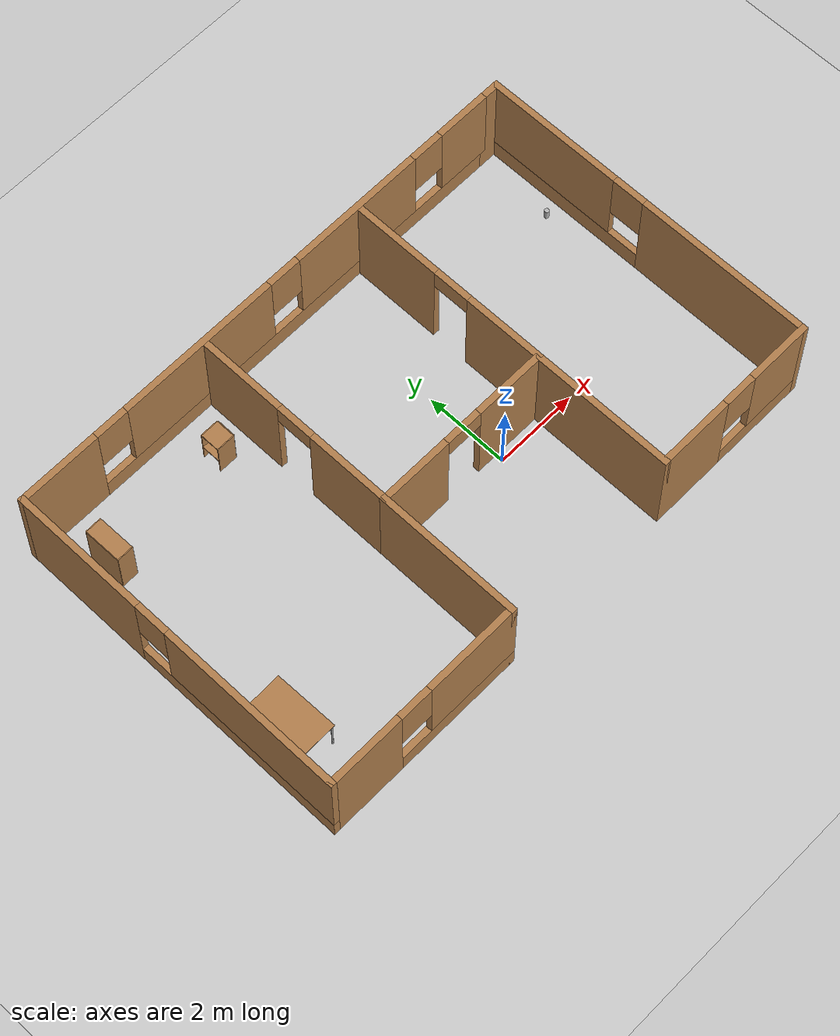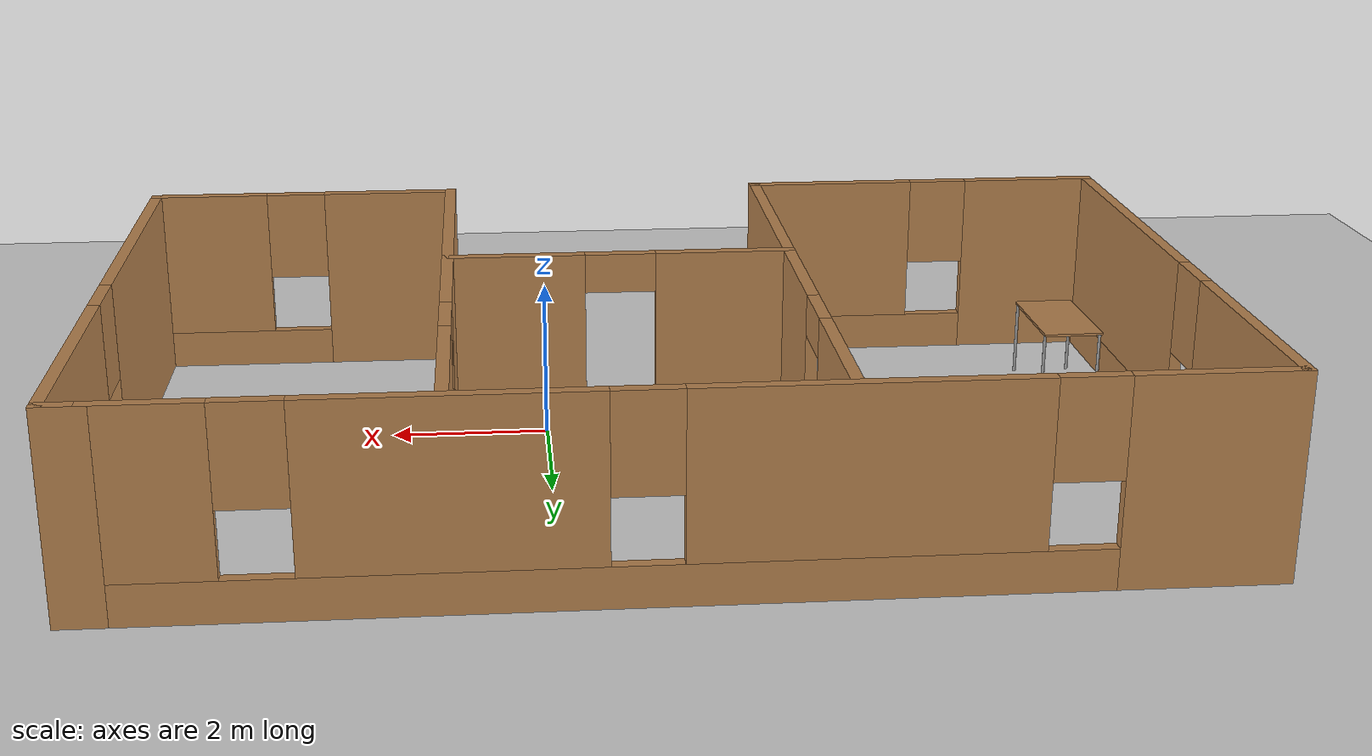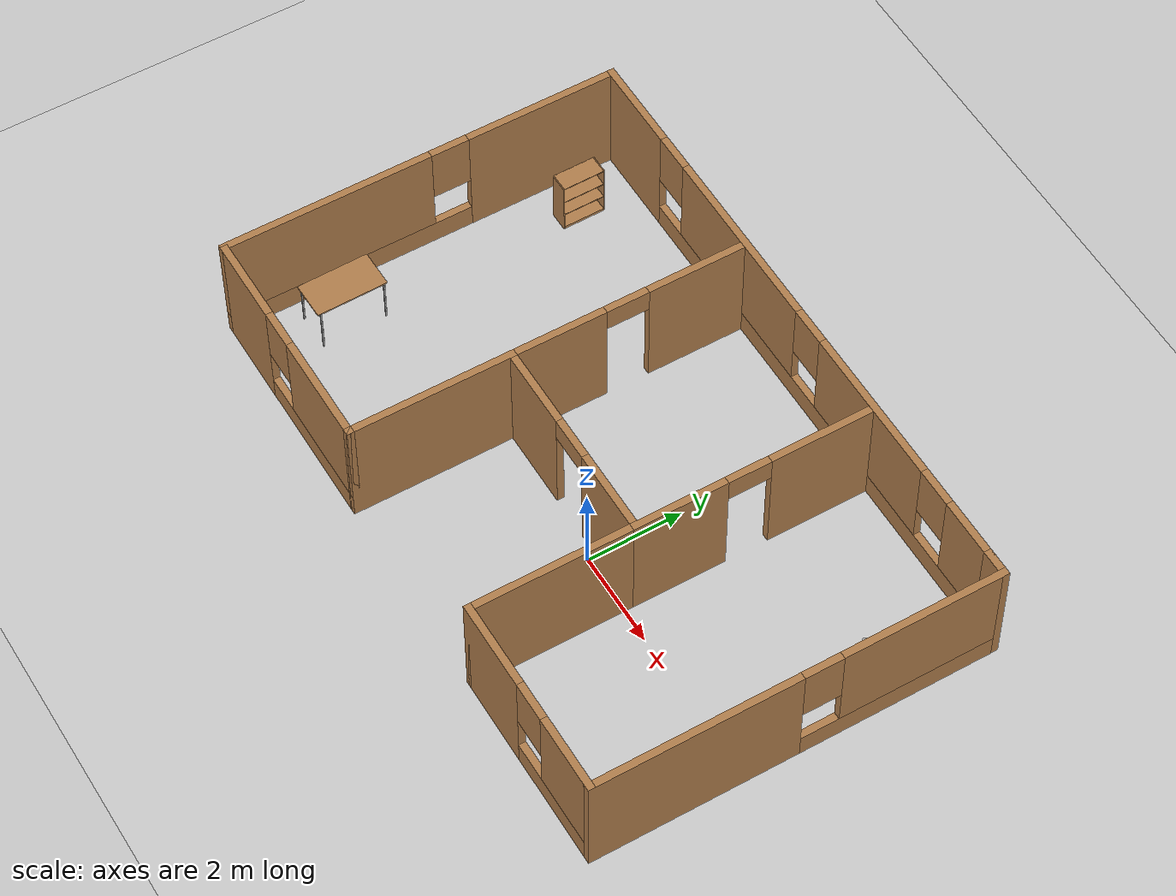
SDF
<sdf version="1.7">
 <world name="default">
  <light name="sun" type="directional">
   <pose>0 0 10 0 -0 0</pose>
   <diffuse>0.8 0.8 0.8 1</diffuse>
   <specular>0.2 0.2 0.2 1</specular>
   <attenuation>
    <range>1000</range>
    <constant>0.9</constant>
    <linear>0.01</linear>
    <quadratic>0.001</quadratic>
   </attenuation>
   <direction>-0.5 0.1 -0.9</direction>
   <spot><inner_angle>0</inner_angle><outer_angle>0</outer_angle><falloff>0</falloff></spot>
  </light>
  <model name="ground_plane">
   <static>1</static>
   <link name="link">
    <collision name="collision">
     <geometry><plane><normal>0 0 1</normal><size>100 100</size></plane></geometry>
     <surface><friction><ode><mu>100</mu><mu2>50</mu2></ode></friction></surface>
    </collision>
    <visual name="visual">
     <cast_shadows>0</cast_shadows>
     <geometry><plane><normal>0 0 1</normal><size>100 100</size></plane></geometry>
     <material>
      <script><uri>file://media/materials/scripts/gazebo.material</uri><name>Gazebo/Grey</name></script>
     </material>
    </visual>
   </link>
  </model>
  <gravity>0 0 -9.8</gravity>
  <magnetic_field>6e-06 2.3e-05 -4.2e-05</magnetic_field>
  <atmosphere type="adiabatic"/>
  <physics type="ode">
   <max_step_size>0.001</max_step_size>
   <real_time_factor>1</real_time_factor>
   <real_time_update_rate>1000</real_time_update_rate>
  </physics>
  <scene><ambient>0.4 0.4 0.4 1</ambient><background>0.7 0.7 0.7 1</background><shadows>1</shadows></scene>
  <audio><device>default</device></audio>
  <spherical_coordinates>
   <surface_model>EARTH_WGS84</surface_model>
   <latitude_deg>0</latitude_deg>
   <longitude_deg>0</longitude_deg>
   <elevation>0</elevation>
   <heading_deg>0</heading_deg>
  </spherical_coordinates>
  <model name="drivr_bot">
   <pose>-1.32553 1.08132 0 0 -0 0</pose>
   <link name="Wall_0">
    <pose>-0.225 4.175 0 0 -0 0</pose>
    <visual name="Wall_0_Visual_0">
     <pose>-5.50525 0 1.25 0 -0 0</pose>
     <geometry><box><size>1.9895 0.15 2.5</size></box></geometry>
     <material>
      <script><uri>file://media/materials/scripts/gazebo.material</uri><name>Gazebo/Wood</name></script>
      <ambient>1 1 1 1</ambient>
     </material>
     <meta><layer>0</layer></meta>
    </visual>
    <collision name="Wall_0_Collision_0">
     <geometry><box><size>1.9895 0.15 2.5</size></box></geometry>
     <pose>-5.50525 0 1.25 0 -0 0</pose>
    </collision>
    <visual name="Wall_0_Visual_1">
     <pose>0.99475 0 0.25 0 -0 0</pose>
     <geometry><box><size>11.0105 0.15 0.5</size></box></geometry>
     <material>
      <script><uri>file://media/materials/scripts/gazebo.material</uri><name>Gazebo/Wood</name></script>
      <ambient>1 1 1 1</ambient>
     </material>
     <meta><layer>0</layer></meta>
    </visual>
    <collision name="Wall_0_Collision_1">
     <geometry><box><size>11.0105 0.15 0.5</size></box></geometry>
     <pose>0.99475 0 0.25 0 -0 0</pose>
    </collision>
    <visual name="Wall_0_Visual_2">
     <pose>-1.73487 0 1.5 0 -0 0</pose>
     <geometry><box><size>3.95127 0.15 2</size></box></geometry>
     <material>
      <script><uri>file://media/materials/scripts/gazebo.material</uri><name>Gazebo/Wood</name></script>
      <ambient>1 1 1 1</ambient>
     </material>
     <meta><layer>0</layer></meta>
    </visual>
    <collision name="Wall_0_Collision_2">
     <geometry><box><size>3.95127 0.15 2</size></box></geometry>
     <pose>-1.73487 0 1.5 0 -0 0</pose>
    </collision>
    <visual name="Wall_0_Visual_3">
     <pose>2.70766 0 1.5 0 -0 0</pose>
     <geometry><box><size>3.33378 0.15 2</size></box></geometry>
     <material>
      <script><uri>file://media/materials/scripts/gazebo.material</uri><name>Gazebo/Wood</name></script>
      <ambient>1 1 1 1</ambient>
     </material>
     <meta><layer>0</layer></meta>
    </visual>
    <collision name="Wall_0_Collision_3">
     <geometry><box><size>3.33378 0.15 2</size></box></geometry>
     <pose>2.70766 0 1.5 0 -0 0</pose>
    </collision>
    <visual name="Wall_0_Visual_4">
     <pose>5.83727 0 1.5 0 -0 0</pose>
     <geometry><box><size>1.32545 0.15 2</size></box></geometry>
     <material>
      <script><uri>file://media/materials/scripts/gazebo.material</uri><name>Gazebo/Wood</name></script>
      <ambient>1 1 1 1</ambient>
     </material>
     <meta><layer>0</layer></meta>
    </visual>
    <collision name="Wall_0_Collision_4">
     <geometry><box><size>1.32545 0.15 2</size></box></geometry>
     <pose>5.83727 0 1.5 0 -0 0</pose>
    </collision>
    <visual name="Wall_0_Visual_5">
     <pose>-4.1105 0 1.9 0 -0 0</pose>
     <geometry><box><size>0.8 0.15 1.2</size></box></geometry>
     <material>
      <script><uri>file://media/materials/scripts/gazebo.material</uri><name>Gazebo/Wood</name></script>
      <ambient>1 1 1 1</ambient>
     </material>
     <meta><layer>0</layer></meta>
    </visual>
    <collision name="Wall_0_Collision_5">
     <geometry><box><size>0.8 0.15 1.2</size></box></geometry>
     <pose>-4.1105 0 1.9 0 -0 0</pose>
    </collision>
    <visual name="Wall_0_Visual_6">
     <pose>0.64077 0 1.9 0 -0 0</pose>
     <geometry><box><size>0.8 0.15 1.2</size></box></geometry>
     <material>
      <script><uri>file://media/materials/scripts/gazebo.material</uri><name>Gazebo/Wood</name></script>
      <ambient>1 1 1 1</ambient>
     </material>
     <meta><layer>0</layer></meta>
    </visual>
    <collision name="Wall_0_Collision_6">
     <geometry><box><size>0.8 0.15 1.2</size></box></geometry>
     <pose>0.64077 0 1.9 0 -0 0</pose>
    </collision>
    <visual name="Wall_0_Visual_7">
     <pose>4.77455 0 1.9 0 -0 0</pose>
     <geometry><box><size>0.8 0.15 1.2</size></box></geometry>
     <material>
      <script><uri>file://media/materials/scripts/gazebo.material</uri><name>Gazebo/Wood</name></script>
      <ambient>1 1 1 1</ambient>
     </material>
     <meta><layer>0</layer></meta>
    </visual>
    <collision name="Wall_0_Collision_7">
     <geometry><box><size>0.8 0.15 1.2</size></box></geometry>
     <pose>4.77455 0 1.9 0 -0 0</pose>
    </collision>
   </link>
   <link name="Wall_11">
    <pose>2.55 1.6 0 0 -0 1.5708</pose>
    <visual name="Wall_11_Visual_0">
     <pose>-1.52095 0 1.25 0 -0 0</pose>
     <geometry><box><size>1.95811 0.15 2.5</size></box></geometry>
     <material>
      <script><uri>file://media/materials/scripts/gazebo.material</uri><name>Gazebo/Wood</name></script>
      <ambient>1 1 1 1</ambient>
     </material>
     <meta><layer>0</layer></meta>
    </visual>
    <collision name="Wall_11_Collision_0">
     <geometry><box><size>1.95811 0.15 2.5</size></box></geometry>
     <pose>-1.52095 0 1.25 0 -0 0</pose>
    </collision>
    <visual name="Wall_11_Visual_1">
     <pose>1.42905 0 1.25 0 -0 0</pose>
     <geometry><box><size>2.14189 0.15 2.5</size></box></geometry>
     <material>
      <script><uri>file://media/materials/scripts/gazebo.material</uri><name>Gazebo/Wood</name></script>
      <ambient>1 1 1 1</ambient>
     </material>
     <meta><layer>0</layer></meta>
    </visual>
    <collision name="Wall_11_Collision_1">
     <geometry><box><size>2.14189 0.15 2.5</size></box></geometry>
     <pose>1.42905 0 1.25 0 -0 0</pose>
    </collision>
    <visual name="Wall_11_Visual_2">
     <pose>-0.091891 0 2.25 0 -0 0</pose>
     <geometry><box><size>0.9 0.15 0.5</size></box></geometry>
     <material>
      <script><uri>file://media/materials/scripts/gazebo.material</uri><name>Gazebo/Wood</name></script>
      <ambient>1 1 1 1</ambient>
     </material>
     <meta><layer>0</layer></meta>
    </visual>
    <collision name="Wall_11_Collision_2">
     <geometry><box><size>0.9 0.15 0.5</size></box></geometry>
     <pose>-0.091891 0 2.25 0 -0 0</pose>
    </collision>
   </link>
   <link name="Wall_13">
    <pose>-1.8 1.6 0 0 -0 1.5708</pose>
    <visual name="Wall_13_Visual_0">
     <pose>-1.47806 0 1.25 0 -0 0</pose>
     <geometry><box><size>2.04387 0.15 2.5</size></box></geometry>
     <material>
      <script><uri>file://media/materials/scripts/gazebo.material</uri><name>Gazebo/Wood</name></script>
      <ambient>1 1 1 1</ambient>
     </material>
     <meta><layer>0</layer></meta>
    </visual>
    <collision name="Wall_13_Collision_0">
     <geometry><box><size>2.04387 0.15 2.5</size></box></geometry>
     <pose>-1.47806 0 1.25 0 -0 0</pose>
    </collision>
    <visual name="Wall_13_Visual_1">
     <pose>1.47194 0 1.25 0 -0 0</pose>
     <geometry><box><size>2.05613 0.15 2.5</size></box></geometry>
     <material>
      <script><uri>file://media/materials/scripts/gazebo.material</uri><name>Gazebo/Wood</name></script>
      <ambient>1 1 1 1</ambient>
     </material>
     <meta><layer>0</layer></meta>
    </visual>
    <collision name="Wall_13_Collision_1">
     <geometry><box><size>2.05613 0.15 2.5</size></box></geometry>
     <pose>1.47194 0 1.25 0 -0 0</pose>
    </collision>
    <visual name="Wall_13_Visual_2">
     <pose>-0.006128 0 2.25 0 -0 0</pose>
     <geometry><box><size>0.9 0.15 0.5</size></box></geometry>
     <material>
      <script><uri>file://media/materials/scripts/gazebo.material</uri><name>Gazebo/Wood</name></script>
      <ambient>1 1 1 1</ambient>
     </material>
     <meta><layer>0</layer></meta>
    </visual>
    <collision name="Wall_13_Collision_2">
     <geometry><box><size>0.9 0.15 0.5</size></box></geometry>
     <pose>-0.006128 0 2.25 0 -0 0</pose>
    </collision>
   </link>
   <link name="Wall_2">
    <pose>-6.65 0 0 0 -0 -1.5708</pose>
    <visual name="Wall_2_Visual_0">
     <pose>-2.61593 0 1.25 0 -0 0</pose>
     <geometry><box><size>3.26813 0.15 2.5</size></box></geometry>
     <material>
      <script><uri>file://media/materials/scripts/gazebo.material</uri><name>Gazebo/Wood</name></script>
      <ambient>1 1 1 1</ambient>
     </material>
     <meta><layer>0</layer></meta>
    </visual>
    <collision name="Wall_2_Collision_0">
     <geometry><box><size>3.26813 0.15 2.5</size></box></geometry>
     <pose>-2.61593 0 1.25 0 -0 0</pose>
    </collision>
    <visual name="Wall_2_Visual_1">
     <pose>1.63407 0 0.25 0 -0 0</pose>
     <geometry><box><size>5.23187 0.15 0.5</size></box></geometry>
     <material>
      <script><uri>file://media/materials/scripts/gazebo.material</uri><name>Gazebo/Wood</name></script>
      <ambient>1 1 1 1</ambient>
     </material>
     <meta><layer>0</layer></meta>
    </visual>
    <collision name="Wall_2_Collision_1">
     <geometry><box><size>5.23187 0.15 0.5</size></box></geometry>
     <pose>1.63407 0 0.25 0 -0 0</pose>
    </collision>
    <visual name="Wall_2_Visual_2">
     <pose>2.03407 0 1.5 0 -0 0</pose>
     <geometry><box><size>4.43187 0.15 2</size></box></geometry>
     <material>
      <script><uri>file://media/materials/scripts/gazebo.material</uri><name>Gazebo/Wood</name></script>
      <ambient>1 1 1 1</ambient>
     </material>
     <meta><layer>0</layer></meta>
    </visual>
    <collision name="Wall_2_Collision_2">
     <geometry><box><size>4.43187 0.15 2</size></box></geometry>
     <pose>2.03407 0 1.5 0 -0 0</pose>
    </collision>
    <visual name="Wall_2_Visual_3">
     <pose>-0.581869 0 1.9 0 -0 0</pose>
     <geometry><box><size>0.8 0.15 1.2</size></box></geometry>
     <material>
      <script><uri>file://media/materials/scripts/gazebo.material</uri><name>Gazebo/Wood</name></script>
      <ambient>1 1 1 1</ambient>
     </material>
     <meta><layer>0</layer></meta>
    </visual>
    <collision name="Wall_2_Collision_3">
     <geometry><box><size>0.8 0.15 1.2</size></box></geometry>
     <pose>-0.581869 0 1.9 0 -0 0</pose>
    </collision>
   </link>
   <link name="Wall_3">
    <pose>-4.225 -4.175 0 0 -0 0</pose>
    <visual name="Wall_3_Visual_0">
     <pose>-1.56528 0 1.25 0 -0 0</pose>
     <geometry><box><size>1.86943 0.15 2.5</size></box></geometry>
     <material>
      <script><uri>file://media/materials/scripts/gazebo.material</uri><name>Gazebo/Wood</name></script>
      <ambient>1 1 1 1</ambient>
     </material>
     <meta><layer>0</layer></meta>
    </visual>
    <collision name="Wall_3_Collision_0">
     <geometry><box><size>1.86943 0.15 2.5</size></box></geometry>
     <pose>-1.56528 0 1.25 0 -0 0</pose>
    </collision>
    <visual name="Wall_3_Visual_1">
     <pose>0.934716 0 0.25 0 -0 0</pose>
     <geometry><box><size>3.13057 0.15 0.5</size></box></geometry>
     <material>
      <script><uri>file://media/materials/scripts/gazebo.material</uri><name>Gazebo/Wood</name></script>
      <ambient>1 1 1 1</ambient>
     </material>
     <meta><layer>0</layer></meta>
    </visual>
    <collision name="Wall_3_Collision_1">
     <geometry><box><size>3.13057 0.15 0.5</size></box></geometry>
     <pose>0.934716 0 0.25 0 -0 0</pose>
    </collision>
    <visual name="Wall_3_Visual_2">
     <pose>1.33472 0 1.5 0 -0 0</pose>
     <geometry><box><size>2.33057 0.15 2</size></box></geometry>
     <material>
      <script><uri>file://media/materials/scripts/gazebo.material</uri><name>Gazebo/Wood</name></script>
      <ambient>1 1 1 1</ambient>
     </material>
     <meta><layer>0</layer></meta>
    </visual>
    <collision name="Wall_3_Collision_2">
     <geometry><box><size>2.33057 0.15 2</size></box></geometry>
     <pose>1.33472 0 1.5 0 -0 0</pose>
    </collision>
    <visual name="Wall_3_Visual_3">
     <pose>-0.230567 0 1.9 0 -0 0</pose>
     <geometry><box><size>0.8 0.15 1.2</size></box></geometry>
     <material>
      <script><uri>file://media/materials/scripts/gazebo.material</uri><name>Gazebo/Wood</name></script>
      <ambient>1 1 1 1</ambient>
     </material>
     <meta><layer>0</layer></meta>
    </visual>
    <collision name="Wall_3_Collision_3">
     <geometry><box><size>0.8 0.15 1.2</size></box></geometry>
     <pose>-0.230567 0 1.9 0 -0 0</pose>
    </collision>
   </link>
   <link name="Wall_4">
    <collision name="Wall_4_Collision">
     <geometry><box><size>3.5 0.15 2.5</size></box></geometry>
     <pose>0 0 1.25 0 -0 0</pose>
    </collision>
    <visual name="Wall_4_Visual">
     <pose>0 0 1.25 0 -0 0</pose>
     <geometry><box><size>3.5 0.15 2.5</size></box></geometry>
     <material>
      <script><uri>file://media/materials/scripts/gazebo.material</uri><name>Gazebo/Wood</name></script>
      <ambient>1 1 1 1</ambient>
     </material>
     <meta><layer>0</layer></meta>
    </visual>
    <pose>-1.8 -2.5 0 0 -0 1.5708</pose>
   </link>
   <link name="Wall_5">
    <pose>0.375 -0.825 0 0 -0 0</pose>
    <visual name="Wall_5_Visual_0">
     <pose>-1.35534 0 1.25 0 -0 0</pose>
     <geometry><box><size>1.78931 0.15 2.5</size></box></geometry>
     <material>
      <script><uri>file://media/materials/scripts/gazebo.material</uri><name>Gazebo/Wood</name></script>
      <ambient>1 1 1 1</ambient>
     </material>
     <meta><layer>0</layer></meta>
    </visual>
    <collision name="Wall_5_Collision_0">
     <geometry><box><size>1.78931 0.15 2.5</size></box></geometry>
     <pose>-1.35534 0 1.25 0 -0 0</pose>
    </collision>
    <visual name="Wall_5_Visual_1">
     <pose>1.34466 0 1.25 0 -0 0</pose>
     <geometry><box><size>1.81069 0.15 2.5</size></box></geometry>
     <material>
      <script><uri>file://media/materials/scripts/gazebo.material</uri><name>Gazebo/Wood</name></script>
      <ambient>1 1 1 1</ambient>
     </material>
     <meta><layer>0</layer></meta>
    </visual>
    <collision name="Wall_5_Collision_1">
     <geometry><box><size>1.81069 0.15 2.5</size></box></geometry>
     <pose>1.34466 0 1.25 0 -0 0</pose>
    </collision>
    <visual name="Wall_5_Visual_2">
     <pose>-0.010688 0 2.25 0 -0 0</pose>
     <geometry><box><size>0.9 0.15 0.5</size></box></geometry>
     <material>
      <script><uri>file://media/materials/scripts/gazebo.material</uri><name>Gazebo/Wood</name></script>
      <ambient>1 1 1 1</ambient>
     </material>
     <meta><layer>0</layer></meta>
    </visual>
    <collision name="Wall_5_Collision_2">
     <geometry><box><size>0.9 0.15 0.5</size></box></geometry>
     <pose>-0.010688 0 2.25 0 -0 0</pose>
    </collision>
   </link>
   <link name="Wall_6">
    <collision name="Wall_6_Collision">
     <geometry><box><size>3.5 0.15 2.5</size></box></geometry>
     <pose>0 0 1.25 0 -0 0</pose>
    </collision>
    <visual name="Wall_6_Visual">
     <pose>0 0 1.25 0 -0 0</pose>
     <geometry><box><size>3.5 0.15 2.5</size></box></geometry>
     <material>
      <script><uri>file://media/materials/scripts/gazebo.material</uri><name>Gazebo/Wood</name></script>
      <ambient>1 1 1 1</ambient>
     </material>
     <meta><layer>0</layer></meta>
    </visual>
    <pose>2.55 -2.5 0 0 -0 -1.5708</pose>
   </link>
   <link name="Wall_7">
    <pose>4.6 -4.175 0 0 -0 0</pose>
    <visual name="Wall_7_Visual_0">
     <pose>-1.20196 0 1.25 0 -0 0</pose>
     <geometry><box><size>1.84607 0.15 2.5</size></box></geometry>
     <material>
      <script><uri>file://media/materials/scripts/gazebo.material</uri><name>Gazebo/Wood</name></script>
      <ambient>1 1 1 1</ambient>
     </material>
     <meta><layer>0</layer></meta>
    </visual>
    <collision name="Wall_7_Collision_0">
     <geometry><box><size>1.84607 0.15 2.5</size></box></geometry>
     <pose>-1.20196 0 1.25 0 -0 0</pose>
    </collision>
    <visual name="Wall_7_Visual_1">
     <pose>0.923036 0 0.25 0 -0 0</pose>
     <geometry><box><size>2.40393 0.15 0.5</size></box></geometry>
     <material>
      <script><uri>file://media/materials/scripts/gazebo.material</uri><name>Gazebo/Wood</name></script>
      <ambient>1 1 1 1</ambient>
     </material>
     <meta><layer>0</layer></meta>
    </visual>
    <collision name="Wall_7_Collision_1">
     <geometry><box><size>2.40393 0.15 0.5</size></box></geometry>
     <pose>0.923036 0 0.25 0 -0 0</pose>
    </collision>
    <visual name="Wall_7_Visual_2">
     <pose>1.32304 0 1.5 0 -0 0</pose>
     <geometry><box><size>1.60393 0.15 2</size></box></geometry>
     <material>
      <script><uri>file://media/materials/scripts/gazebo.material</uri><name>Gazebo/Wood</name></script>
      <ambient>1 1 1 1</ambient>
     </material>
     <meta><layer>0</layer></meta>
    </visual>
    <collision name="Wall_7_Collision_2">
     <geometry><box><size>1.60393 0.15 2</size></box></geometry>
     <pose>1.32304 0 1.5 0 -0 0</pose>
    </collision>
    <visual name="Wall_7_Visual_3">
     <pose>0.121072 0 1.9 0 -0 0</pose>
     <geometry><box><size>0.8 0.15 1.2</size></box></geometry>
     <material>
      <script><uri>file://media/materials/scripts/gazebo.material</uri><name>Gazebo/Wood</name></script>
      <ambient>1 1 1 1</ambient>
     </material>
     <meta><layer>0</layer></meta>
    </visual>
    <collision name="Wall_7_Collision_3">
     <geometry><box><size>0.8 0.15 1.2</size></box></geometry>
     <pose>0.121072 0 1.9 0 -0 0</pose>
    </collision>
   </link>
   <link name="Wall_8">
    <pose>6.65 0 0 0 -0 1.5708</pose>
    <visual name="Wall_8_Visual_0">
     <pose>-2.10268 0 1.25 0 -0 0</pose>
     <geometry><box><size>4.29465 0.15 2.5</size></box></geometry>
     <material>
      <script><uri>file://media/materials/scripts/gazebo.material</uri><name>Gazebo/Wood</name></script>
      <ambient>1 1 1 1</ambient>
     </material>
     <meta><layer>0</layer></meta>
    </visual>
    <collision name="Wall_8_Collision_0">
     <geometry><box><size>4.29465 0.15 2.5</size></box></geometry>
     <pose>-2.10268 0 1.25 0 -0 0</pose>
    </collision>
    <visual name="Wall_8_Visual_1">
     <pose>2.14732 0 0.25 0 -0 0</pose>
     <geometry><box><size>4.20535 0.15 0.5</size></box></geometry>
     <material>
      <script><uri>file://media/materials/scripts/gazebo.material</uri><name>Gazebo/Wood</name></script>
      <ambient>1 1 1 1</ambient>
     </material>
     <meta><layer>0</layer></meta>
    </visual>
    <collision name="Wall_8_Collision_1">
     <geometry><box><size>4.20535 0.15 0.5</size></box></geometry>
     <pose>2.14732 0 0.25 0 -0 0</pose>
    </collision>
    <visual name="Wall_8_Visual_2">
     <pose>2.54732 0 1.5 0 -0 0</pose>
     <geometry><box><size>3.40535 0.15 2</size></box></geometry>
     <material>
      <script><uri>file://media/materials/scripts/gazebo.material</uri><name>Gazebo/Wood</name></script>
      <ambient>1 1 1 1</ambient>
     </material>
     <meta><layer>0</layer></meta>
    </visual>
    <collision name="Wall_8_Collision_2">
     <geometry><box><size>3.40535 0.15 2</size></box></geometry>
     <pose>2.54732 0 1.5 0 -0 0</pose>
    </collision>
    <visual name="Wall_8_Visual_3">
     <pose>0.444648 0 1.9 0 -0 0</pose>
     <geometry><box><size>0.8 0.15 1.2</size></box></geometry>
     <material>
      <script><uri>file://media/materials/scripts/gazebo.material</uri><name>Gazebo/Wood</name></script>
      <ambient>1 1 1 1</ambient>
     </material>
     <meta><layer>0</layer></meta>
    </visual>
    <collision name="Wall_8_Collision_3">
     <geometry><box><size>0.8 0.15 1.2</size></box></geometry>
     <pose>0.444648 0 1.9 0 -0 0</pose>
    </collision>
   </link>
   <link name="Wall_9">
    <collision name="Wall_9_Collision">
     <geometry><box><size>0.6 0.15 2.5</size></box></geometry>
     <pose>0 0 1.25 0 -0 0</pose>
    </collision>
    <visual name="Wall_9_Visual">
     <pose>0 0 1.25 0 -0 0</pose>
     <geometry><box><size>0.6 0.15 2.5</size></box></geometry>
     <material>
      <script><uri>file://media/materials/scripts/gazebo.material</uri><name>Gazebo/Wood</name></script>
      <ambient>1 1 1 1</ambient>
     </material>
     <meta><layer>0</layer></meta>
    </visual>
    <pose>6.425 4.175 0 0 -0 3.14159</pose>
   </link>
   <static>1</static>
  </model>
  <model name="bookshelf">
   <static>1</static>
   <link name="link">
    <inertial><mass>1</mass></inertial>
    <collision name="back">
     <pose>0 0.005 0.6 0 -0 0</pose>
     <geometry><box><size>0.9 0.01 1.2</size></box></geometry>
    </collision>
    <visual name="visual_bookshelf">
     <pose>0 0.005 0.6 0 -0 0</pose>
     <geometry><box><size>0.9 0.01 1.2</size></box></geometry>
     <material>
      <script><uri>file://media/materials/scripts/gazebo.material</uri><name>Gazebo/Wood</name></script>
     </material>
    </visual>
    <collision name="left_side">
     <pose>0.45 -0.195 0.6 0 -0 0</pose>
     <geometry><box><size>0.02 0.4 1.2</size></box></geometry>
    </collision>
    <visual name="visual2">
     <pose>0.45 -0.195 0.6 0 -0 0</pose>
     <geometry><box><size>0.02 0.4 1.2</size></box></geometry>
     <material>
      <script><uri>file://media/materials/scripts/gazebo.material</uri><name>Gazebo/Wood</name></script>
     </material>
    </visual>
    <collision name="right_side">
     <pose>-0.45 -0.195 0.6 0 -0 0</pose>
     <geometry><box><size>0.02 0.4 1.2</size></box></geometry>
    </collision>
    <visual name="visual3">
     <pose>-0.45 -0.195 0.6 0 -0 0</pose>
     <geometry><box><size>0.02 0.4 1.2</size></box></geometry>
     <material>
      <script><uri>file://media/materials/scripts/gazebo.material</uri><name>Gazebo/Wood</name></script>
     </material>
    </visual>
    <collision name="bottom">
     <pose>0 -0.195 0.03 0 -0 0</pose>
     <geometry><box><size>0.88 0.4 0.06</size></box></geometry>
    </collision>
    <visual name="visual4">
     <pose>0 -0.195 0.03 0 -0 0</pose>
     <geometry><box><size>0.88 0.4 0.06</size></box></geometry>
     <material>
      <script><uri>file://media/materials/scripts/gazebo.material</uri><name>Gazebo/Wood</name></script>
     </material>
    </visual>
    <collision name="top">
     <pose>0 -0.195 1.19 0 -0 0</pose>
     <geometry><box><size>0.88 0.4 0.02</size></box></geometry>
    </collision>
    <visual name="visual5">
     <pose>0 -0.195 1.19 0 -0 0</pose>
     <geometry><box><size>0.88 0.4 0.02</size></box></geometry>
     <material>
      <script><uri>file://media/materials/scripts/gazebo.material</uri><name>Gazebo/Wood</name></script>
     </material>
    </visual>
    <collision name="low_shelf">
     <pose>0 -0.195 0.43 0 -0 0</pose>
     <geometry><box><size>0.88 0.4 0.02</size></box></geometry>
    </collision>
    <visual name="visual6">
     <pose>0 -0.195 0.43 0 -0 0</pose>
     <geometry><box><size>0.88 0.4 0.02</size></box></geometry>
     <material>
      <script><uri>file://media/materials/scripts/gazebo.material</uri><name>Gazebo/Wood</name></script>
     </material>
    </visual>
    <collision name="high_shelf">
     <pose>0 -0.195 0.8 0 -0 0</pose>
     <geometry><box><size>0.88 0.4 0.02</size></box></geometry>
    </collision>
    <visual name="visual7">
     <pose>0 -0.195 0.8 0 -0 0</pose>
     <geometry><box><size>0.88 0.4 0.02</size></box></geometry>
     <material>
      <script><uri>file://media/materials/scripts/gazebo.material</uri><name>Gazebo/Wood</name></script>
     </material>
    </visual>
   </link>
   <pose>-7.26084 3.97092 0 0 -0 1.57997</pose>
  </model>
  <model name="beer">
   <link name="link">
    <pose>0 0 0.115 0 -0 0</pose>
    <inertial>
     <mass>0.39</mass>
     <inertia><ixx>0.00058</ixx><ixy>0</ixy><ixz>0</ixz><iyy>0.00058</iyy><iyz>0</iyz><izz>0.00019</izz></inertia>
    </inertial>
    <collision name="collision">
     <geometry><cylinder><radius>0.055</radius><length>0.23</length></cylinder></geometry>
    </collision>
    <visual name="visual">
     <geometry><cylinder><radius>0.055</radius><length>0.23</length></cylinder></geometry>
     <material>
      <script>
       <uri>model://beer/materials/scripts</uri>
       <uri>model://beer/materials/textures</uri>
       <name>Beer/Diffuse</name>
      </script>
     </material>
    </visual>
   </link>
   <pose>4.5198 3.01137 0.775001 2.5e-05 -8e-06 0.004939</pose>
  </model>
  <model name="table_1">
   <static>1</static>
   <link name="link_1">
    <collision name="surface_table">
     <pose>0 0 1 0 -0 0</pose>
     <geometry><box><size>1.5 0.8 0.03</size></box></geometry>
     <surface><friction><ode><mu>0.6</mu><mu2>0.6</mu2></ode></friction></surface>
    </collision>
    <visual name="visual1">
     <pose>0 0 1 0 -0 0</pose>
     <geometry><box><size>1.5 0.8 0.03</size></box></geometry>
     <material>
      <script><uri>file://media/materials/scripts/gazebo.material</uri><name>Gazebo/Wood</name></script>
     </material>
    </visual>
    <collision name="front_left_leg">
     <pose>0.68 0.38 0.5 0 -0 0</pose>
     <geometry><cylinder><radius>0.02</radius><length>1</length></cylinder></geometry>
    </collision>
    <visual name="front_left_leg_1">
     <pose>0.68 0.38 0.5 0 -0 0</pose>
     <geometry><cylinder><radius>0.02</radius><length>1</length></cylinder></geometry>
     <material>
      <script><uri>file://media/materials/scripts/gazebo.material</uri><name>Gazebo/Grey</name></script>
     </material>
    </visual>
    <collision name="front_right_leg">
     <pose>0.68 -0.38 0.5 0 -0 0</pose>
     <geometry><cylinder><radius>0.02</radius><length>1</length></cylinder></geometry>
    </collision>
    <visual name="front_right_leg_1">
     <pose>0.68 -0.38 0.5 0 -0 0</pose>
     <geometry><cylinder><radius>0.02</radius><length>1</length></cylinder></geometry>
     <material>
      <script><uri>file://media/materials/scripts/gazebo.material</uri><name>Gazebo/Grey</name></script>
     </material>
    </visual>
    <collision name="back_right_leg">
     <pose>-0.68 -0.38 0.5 0 -0 0</pose>
     <geometry><cylinder><radius>0.02</radius><length>1</length></cylinder></geometry>
    </collision>
    <visual name="back_right_leg_1">
     <pose>-0.68 -0.38 0.5 0 -0 0</pose>
     <geometry><cylinder><radius>0.02</radius><length>1</length></cylinder></geometry>
     <material>
      <script><uri>file://media/materials/scripts/gazebo.material</uri><name>Gazebo/Grey</name></script>
     </material>
    </visual>
    <collision name="back_left_leg">
     <pose>-0.68 0.38 0.5 0 -0 0</pose>
     <geometry><cylinder><radius>0.02</radius><length>1</length></cylinder></geometry>
    </collision>
    <visual name="back_left_leg_1">
     <pose>-0.68 0.38 0.5 0 -0 0</pose>
     <geometry><cylinder><radius>0.02</radius><length>1</length></cylinder></geometry>
     <material>
      <script><uri>file://media/materials/scripts/gazebo.material</uri><name>Gazebo/Grey</name></script>
     </material>
    </visual>
   </link>
   <pose>-7.13841 -1.15578 0 0 -0 1.58724</pose>
  </model>
  <model name="cabinet">
   <static>1</static>
   <link name="cabinet_bottom_plate">
    <inertial>
     <pose>0 0 -1 0 -0 0</pose>
     <inertia><ixx>2.05</ixx><ixy>0</ixy><ixz>0</ixz><iyy>2.05</iyy><iyz>0</iyz><izz>2.05</izz></inertia>
     <mass>25</mass>
    </inertial>
    <collision name="cabinet_bottom_plate_geom">
     <pose>0 0 0.01 0 -0 0</pose>
     <geometry><box><size>0.45 0.45 0.02</size></box></geometry>
    </collision>
    <visual name="cabinet_bottom_plate_geom_visual">
     <pose>0 0 0.01 0 -0 0</pose>
     <geometry><box><size>0.45 0.45 0.02</size></box></geometry>
     <material>
      <script><uri>file://media/materials/scripts/gazebo.material</uri><name>Gazebo/Wood</name></script>
     </material>
    </visual>
    <collision name="cabinet_bottom_plate_geom_cabinet_back_plate">
     <pose>0.235 0 0.51 0 -0 0</pose>
     <geometry><box><size>0.02 0.45 1.02</size></box></geometry>
    </collision>
    <visual name="cabinet_bottom_plate_geom_cabinet_back_plate_visual">
     <pose>0.235 0 0.51 0 -0 0</pose>
     <geometry><box><size>0.02 0.45 1.02</size></box></geometry>
     <material>
      <script><uri>file://media/materials/scripts/gazebo.material</uri><name>Gazebo/Wood</name></script>
     </material>
    </visual>
    <collision name="cabinet_bottom_plate_geom_cabinet_left_plate">
     <pose>0 0.235 0.51 0 -0 0</pose>
     <geometry><box><size>0.45 0.02 1.02</size></box></geometry>
    </collision>
    <visual name="cabinet_bottom_plate_geom_cabinet_left_plate_visual">
     <pose>0 0.235 0.51 0 -0 0</pose>
     <geometry><box><size>0.45 0.02 1.02</size></box></geometry>
     <material>
      <script><uri>file://media/materials/scripts/gazebo.material</uri><name>Gazebo/Wood</name></script>
     </material>
    </visual>
    <collision name="cabinet_bottom_plate_geom_cabinet_middle_plate">
     <pose>0 0 0.51 0 -0 0</pose>
     <geometry><box><size>0.45 0.45 0.02</size></box></geometry>
    </collision>
    <visual name="cabinet_bottom_plate_geom_cabinet_middle_plate_visual">
     <pose>0 0 0.51 0 -0 0</pose>
     <geometry><box><size>0.45 0.45 0.02</size></box></geometry>
     <material>
      <script><uri>file://media/materials/scripts/gazebo.material</uri><name>Gazebo/Wood</name></script>
     </material>
    </visual>
    <collision name="cabinet_bottom_plate_geom_cabinet_right_plate">
     <pose>0 -0.235 0.51 0 -0 0</pose>
     <geometry><box><size>0.45 0.02 1.02</size></box></geometry>
    </collision>
    <visual name="cabinet_bottom_plate_geom_cabinet_right_plate_visual">
     <pose>0 -0.235 0.51 0 -0 0</pose>
     <geometry><box><size>0.45 0.02 1.02</size></box></geometry>
     <material>
      <script><uri>file://media/materials/scripts/gazebo.material</uri><name>Gazebo/Wood</name></script>
     </material>
    </visual>
    <collision name="cabinet_bottom_plate_geom_cabinet_top_plate">
     <pose>0 0 1.01 0 -0 0</pose>
     <geometry><box><size>0.45 0.45 0.02</size></box></geometry>
    </collision>
    <visual name="cabinet_bottom_plate_geom_cabinet_top_plate_visual">
     <pose>0 0 1.01 0 -0 0</pose>
     <geometry><box><size>0.45 0.45 0.02</size></box></geometry>
     <material>
      <script><uri>file://media/materials/scripts/gazebo.material</uri><name>Gazebo/Wood</name></script>
     </material>
    </visual>
   </link>
   <pose>-3.90736 4.20013 -0.090705 0 -0 0</pose>
  </model>
 </world>
</sdf>
